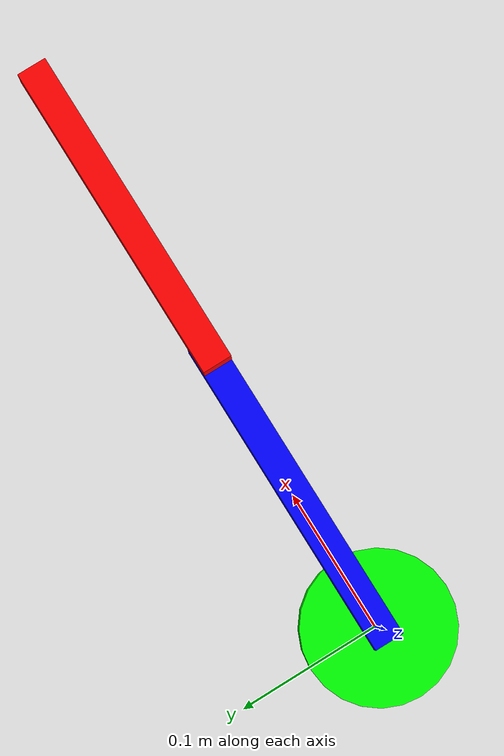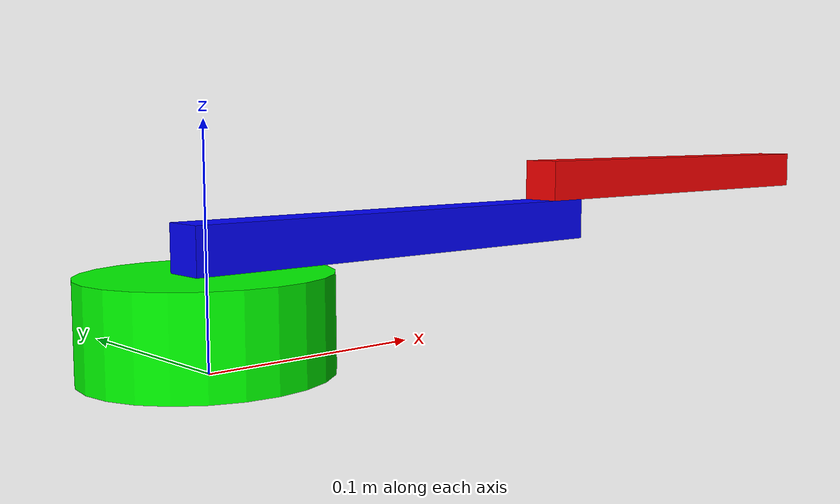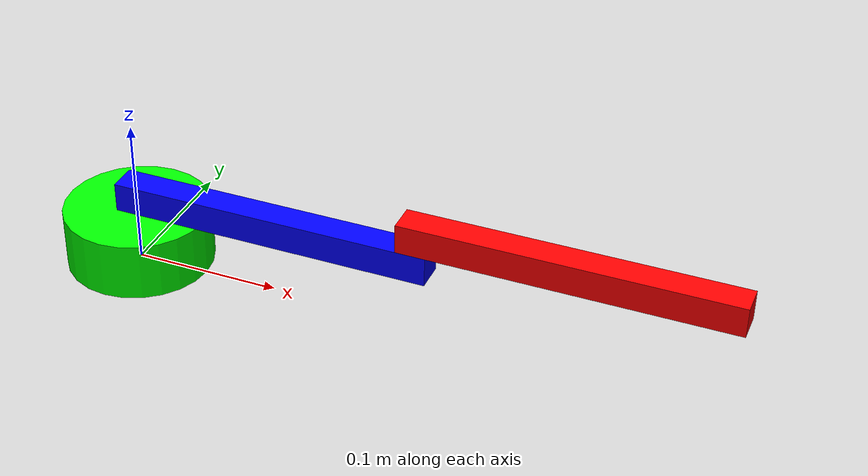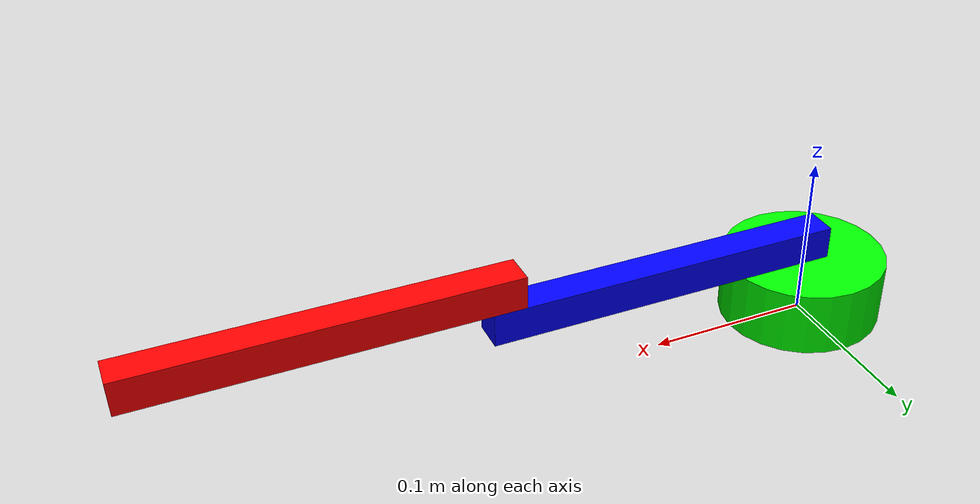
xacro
<?xml version="1.0"?>
<robot name="double_pendulum" xmlns:xacro="http://www.ros.org/wiki/xacro">

  <!-- Parámetros del eslabón 0. Cilindro y centro de masa en el centro -->
  <xacro:property name="mass0" value="1.5"/>
  <xacro:property name="radius0" value="0.05"/> <!-- largo total -->
  <xacro:property name="height0" value="0.04"/>
  <!-- Inercia para orientación: alto sobre el eje Z -->
  <!-- Inercia del cilindro, eje Z a lo largo de la altura -->
  <xacro:property name="ixx0" value="${(1.0/12.0) * mass0 * (3 * radius0 * radius0 + height0 * height0)}"/>
  <xacro:property name="iyy0" value="${ixx0}"/>
  <xacro:property name="izz0" value="${0.5 * mass0 * radius0 * radius0}"/>

  <!-- Parámetros del eslabón 1. Prisma de sección cuadrada y centro de masa en el centro -->
  <xacro:property name="mass1" value="1.5"/>                    <!-- masa de la barra que modela el eslabón -->
  <xacro:property name="length1" value="0.22"/>                 <!-- largo total -->
  <xacro:property name="width1" value="0.02"/>                  <!-- ancho de la sección total -->
  <xacro:property name="a1" value="${length1 - width1}"/>       <!-- distancia entre ejes -->
  <xacro:property name="damping1" value="0.1"/>                 <!-- rozamiento viscoso -->
  <xacro:property name="friction1" value="0.01"/>               <!-- rozamiento de Coulomb -->
  <xacro:property name="Jm1" value="0.0001"/>                   <!-- inercia del rotor del motor -->
  <xacro:property name="N1"  value="10"/>                       <!-- relación de transmisión -->
  <xacro:property name="Jm1_ef" value="${N1*N1 * Jm1}"/>        <!-- inercia del rotor reflejada al eje -->
  <!-- Calculo de la inercia de una barra (con motor en eje de rotación) para orientación a lo largo del eje X -->
  <xacro:property name="ixx1" value="${(1.0/6.0) * mass1 * (width1 * width1)}"/>
  <xacro:property name="izz1" value="${(1.0/12.0) * mass1 * (length1 * length1 + width1 * width1) + Jm1_ef}"/> <!-- super simplificación a fines didácticos -->
  <xacro:property name="iyy1" value="${izz1}"/>

  <!-- Parámetros del eslabón 2. Prisma de sección cuadrada y centro de masa en el centro -->
  <xacro:property name="mass2" value="1.5"/>                    <!-- masa de la barra que modela el eslabón -->
  <xacro:property name="length2" value="0.22"/>                 <!-- largo total -->
  <xacro:property name="width2" value="0.02"/>                  <!-- ancho de la sección total -->
  <xacro:property name="a2" value="${length2 - width2}"/>       <!-- distancia entre ejes -->
  <xacro:property name="damping2" value="0.1"/>                 <!-- rozamiento viscoso -->
  <xacro:property name="friction2" value="0.01"/>               <!-- rozamiento de Coulomb -->
  <xacro:property name="Jm2" value="0.0001"/>                   <!-- inercia del rotor del motor -->
  <xacro:property name="N2"  value="10"/>                       <!-- relación de transmisión -->
  <xacro:property name="Jm2_ef" value="${N2*N2 * Jm2}"/>        <!-- inercia del rotor reflejada al eje -->
  <!-- Calculo de la inercia de una barra (con motor en eje de rotación) para orientación a lo largo del eje X -->
  <xacro:property name="ixx2" value="${(1.0/6.0) * mass2 * (width2 * width2)}"/>
  <xacro:property name="izz2" value="${(1.0/12.0) * mass2 * (length2 * length2 + width2 * width2) + Jm2_ef}"/> <!-- super simplificación a fines didácticos -->
  <xacro:property name="iyy2" value="${izz2}"/>

  <!--******************* DEFINICIONES DE ESLABONES  *******************-->
  <!-- World link -->
  <link name="world"/>

  <!-- Link base (fijo) -->
  <!-- La terna 0 está centrada en la base del cilindro con el Z para arriba  -->
  <link name="base_link">
      <inertial>
        <origin xyz="0 0 ${height0/2.0}"/>
        <mass value="${mass0}"/>
        <inertia ixx="${ixx0}" ixy="0.0" ixz="0.0" iyy="${iyy0}" iyz="0.0" izz="${izz0}"/>
      </inertial>
      <visual>
          <origin xyz="0 0 ${height0/2.0}"/>
          <geometry>
              <cylinder radius="${radius0}" length="${height0}"/>
          </geometry>
          <material name="green">
              <color rgba="0 1 0 1"/>
          </material>
      </visual>
      <collision>
          <origin xyz="0 0 ${height0/2.0}"/>
          <geometry>
              <cylinder radius="${radius0}" length="${height0}"/>
          </geometry>
      </collision>
  </link>

  <!-- Primer eslabón -->
  <!-- La terna 1 está en la entrada del eslabón => DH proximal  -->
  <link name="link1">
      <inertial>
        <origin xyz="${a1/2.0} 0 0"/>
        <mass value="${mass1}"/>
        <inertia ixx="${ixx1}" ixy="0.0" ixz="0.0" iyy="${iyy1}" iyz="0.0" izz="${izz1}"/>
      </inertial>
      <visual>
          <origin xyz="${a1/2.0} 0 0"/>
          <geometry>
              <box size="${length1} ${width1} ${width1}"/>
          </geometry>
          <material name="blue">
              <color rgba="0 0 1 1"/>
          </material>
      </visual>
      <collision>
          <origin xyz="${a1/2.0} 0 0"/>
          <geometry>
              <box size="${length1} ${width1} ${width1}"/>
          </geometry>
      </collision>
  </link>

  <!-- Segundo eslabón -->
  <!-- La terna 2 está en la entrada del eslabón => DH proximal  -->
  <link name="link2">
      <inertial>
          <origin xyz="${a2/2.0} 0 0"/>
          <mass value="${mass2}"/>
          <inertia ixx="${ixx2}" ixy="0.0" ixz="0.0" iyy="${iyy2}" iyz="0.0" izz="${izz2}"/>
      </inertial>
      <visual>
          <origin xyz="${a2/2.0} 0 0"/>
          <geometry>
              <box size="${length2} ${width2} ${width2}"/>
          </geometry>
          <material name="red">
              <color rgba="1 0 0 1"/>
          </material>
      </visual>
      <collision>
          <origin xyz="${a2/2.0} 0 0"/>
          <geometry>
              <box size="${length2} ${width2} ${width2}"/>
          </geometry>
      </collision>
  </link>

  <!--******************* DEFINICIONES DE JUNTAS  *******************-->
  <!-- Junta fija entre world y base_link -->
  <joint name="fixed" type="fixed">
      <parent link="world"/>
      <child link="base_link"/>
      <origin xyz="0 0 0" rpy="0 0 0"/>
  </joint>

  <!-- Junta entre base y link1 -->
  <joint name="joint1" type="revolute">
      <parent link="base_link"/>
      <child link="link1"/>
      <origin xyz="0 0 ${height0+width1/2.0}" rpy="0 0 0"/>
      <axis xyz="0 0 1"/>
      <limit effort="100" lower="-3.14" upper="3.14" velocity="5"/>
      <dynamics damping="${damping1}" friction="${friction1}"/>
  </joint>

  <!-- Junta entre link1 y link2 -->
  <joint name="joint2" type="revolute">
      <parent link="link1"/>
      <child link="link2"/>
      <origin xyz="${a1} 0 ${width1}" rpy="0 0 0"/>
      <axis xyz="0 0 1"/>
      <limit effort="100" lower="-3.14" upper="3.14" velocity="5"/>
      <dynamics damping="${damping2}" friction="${friction2}"/>
  </joint>

  <!--******************* DEFINICIONES DE HERRAMIENTA  *******************-->
  <!-- Terna TOOL0 en el extremo de link2 -->
  <joint name="tool0_joint" type="fixed">
    <parent link="link2"/>
    <child link="tool0"/>
    <origin xyz="${a2} 0 0" rpy="0 0 0"/>
  </joint>

  <link name="tool0"/>

  <!--******************* CONFIGURACION DE la transmisión a fines de documentación ******************* -->
  <!-- La transmisión está fuera del lazo tan solo para que se vea un topic con la velocidad del motor -->
  <!-- Para que quede adentro del lazo hay que cambiar el tipo de controlador -->
  <transmission name="motor1_transmission">
    <type>transmission_interface/SimpleTransmission</type>
    <actuator name="motor1_actuator">
      <mechanicalReduction>${N1}</mechanicalReduction>
    </actuator>
    <joint name="joint1">
      <hardwareInterface>hardware_interface/PositionJointInterface</hardwareInterface>
    </joint>
  </transmission>
  <transmission name="motor2_transmission">
    <type>transmission_interface/SimpleTransmission</type>
    <actuator name="motor2_actuator">
      <mechanicalReduction>${N2}</mechanicalReduction>
    </actuator>
    <joint name="joint2">
      <hardwareInterface>hardware_interface/PositionJointInterface</hardwareInterface>
    </joint>
  </transmission>

  <!--******************* CONFIGURACION DE ros2_control *******************-->
  <ros2_control name="GazeboSystem" type="system">
    <hardware>
      <plugin>gz_ros2_control/GazeboSimSystem</plugin>
    </hardware>
    <joint name="joint1">
      <command_interface name="position">
        <param name="min">-3.14</param>
        <param name="max">3.14</param>
      </command_interface>
      <command_interface name="effort">
        <param name="min">-100</param>
        <param name="max">100</param>
      </command_interface>
      <state_interface name="position">
        <param name="initial_value">1.0</param>
      </state_interface>
      <state_interface name="velocity"/>
      <state_interface name="effort"/>
    </joint>

    <joint name="joint2">
      <command_interface name="position">
        <param name="min">-3.14</param>
        <param name="max">3.14</param>
      </command_interface>
      <command_interface name="effort">
        <param name="min">-100</param>
        <param name="max">100</param>
      </command_interface>
      <state_interface name="position">
        <param name="initial_value">1.0</param>
      </state_interface>
      <state_interface name="velocity"/>
      <state_interface name="effort"/>
    </joint>
  </ros2_control>

  <!-- ros_control plugin -->
  <gazebo>
    <plugin filename="gz_ros2_control-system" name="gz_ros2_control::GazeboSimROS2ControlPlugin">
      <parameters>$(find dp)/config/ros2_controllers.yaml</parameters>
      <robot_param>robot_description</robot_param>
      <robot_param_node>robot_state_publisher</robot_param_node>
    </plugin>
  </gazebo>
</robot>
